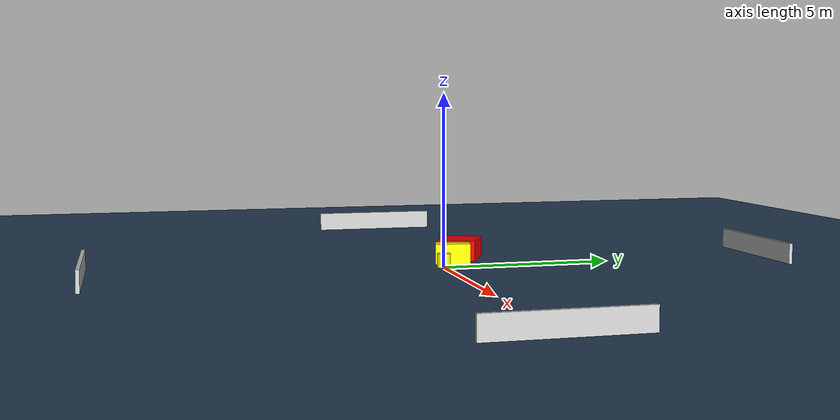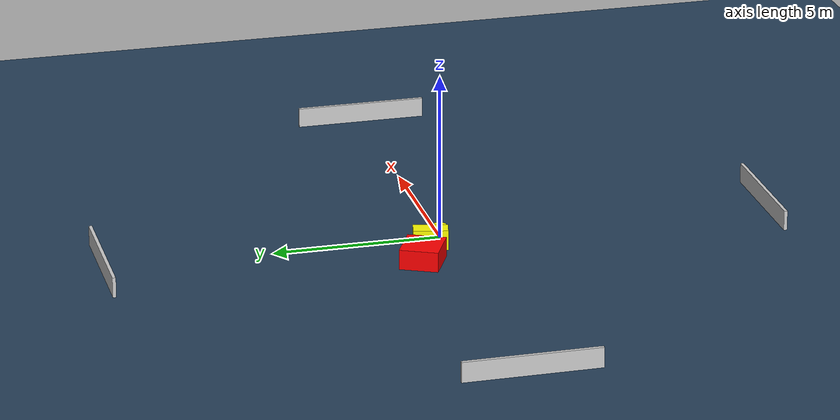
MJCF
<?xml version="1.0" ?>
<mujoco model="generated_environment">
  <option timestep="0.01" integrator="RK4" cone="elliptic"/>
  <default>
    <geom density="1"/>
  </default>
  <asset>
    <texture builtin="gradient" height="3072" name="skybox" rgb1="0.3 0.5 0.7" rgb2="0 0 0" type="skybox" width="512"/>
    <texture builtin="checker" height="300" name="groundplane" rgb1="0.2 0.3 0.4" rgb2="0.1 0.2 0.3" type="2d" width="300"/>
    <material name="groundplane" reflectance="0.2" texrepeat="5 5" texture="groundplane"/>
  </asset>
  <worldbody>
    <light dir="0 0 -1" directional="true" pos="0 0 1.5"/>
    <geom condim="3" friction="0.5 0.005 0.001" material="groundplane" name="floor" pos="0 0 0" size="0 0 0.05" type="plane"/>
    <body name="walls">
      <geom name="wall_1" condim="4" pos="-10.0 0.0 0.3" rgba="0.800000011920929 0.800000011920929 0.800000011920929 1.0" size="0.05 2.0 0.3" type="box"/>
      <geom name="wall_2" condim="4" pos="10.0 0.0 0.3" rgba="0.800000011920929 0.800000011920929 0.800000011920929 1.0" size="0.05 2.0 0.3" type="box"/>
      <geom name="wall_3" condim="4" pos="0.0 -10.0 0.3" rgba="0.800000011920929 0.800000011920929 0.800000011920929 1.0" size="2.0 0.05 0.3" type="box"/>
      <geom name="wall_4" condim="4" pos="0.0 10.0 0.3" rgba="0.800000011920929 0.800000011920929 0.800000011920929 1.0" size="2.0 0.05 0.3" type="box"/>
    </body>
    <body name="robot">
      <joint name="joint_x" type="slide" pos="0 0 0" axis="1 0 0"/>
      <joint name="joint_y" type="slide" pos="0 0 0" axis="0 1 0"/>
      <geom name="robot" type="cylinder" pos="0.0 0.0 0.2" size="0.2 0.2 0.0" mass="5.0" friction="1.0 0.005 0.0001" condim="4" rgba="1.0 1.0 0.0 1.0"/>
    </body>
    <body name="obstacle_1_movable">
      <geom name="obstacle_1_movable" condim="4" pos="-0.6330602686688995 0.44046362430170843 0.3" euler="0 0 77.39947757994378" friction="0.0 0.005 0.001" rgba="1.0 1.0 0.0 1.0" size="0.512691710370969 0.24692662291265802 0.3" type="box" mass="0.1"/>
      <joint type="free"/>
    </body>
    <body name="obstacle_2_static">
      <geom name="obstacle_2_static" condim="4" pos="-1.745090894790286 0.9546274790059438 0.3" euler="0 0 244.23735545203644" friction="0.0 0.005 0.001" rgba="1.0 0.0 0.0 1.0" size="0.5736310458126993 0.6083700834795889 0.3" type="box"/>
    </body>
  </worldbody>
  <actuator>
    <motor name="actuator_x" joint="joint_x" gear="1" ctrlrange="-1 1"/>
    <motor name="actuator_y" joint="joint_y" gear="1" ctrlrange="-1 1"/>
  </actuator>
</mujoco>
